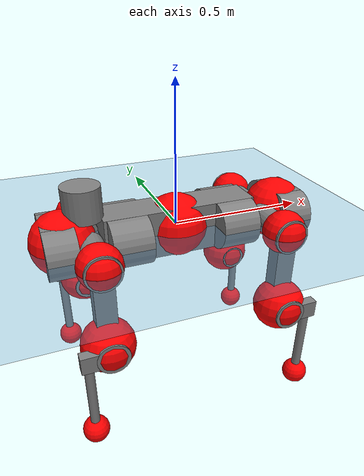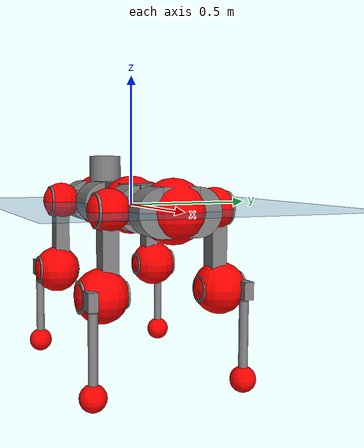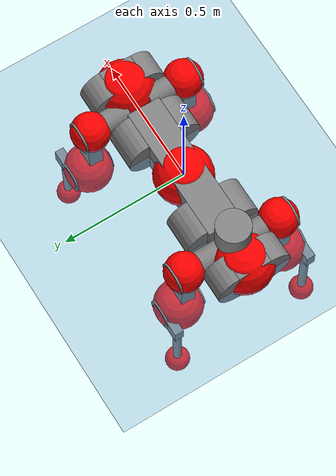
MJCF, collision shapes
<mujoco model="anymal_c">
  <compiler angle="radian" assetdir="assets" balanceinertia="true" inertiafromgeom="false"/>

  <option timestep="0.005" density="1.2" viscosity="2e-05"/>

  <size nkey="1"/>

  <visual>
    <quality shadowsize="8192"/>
    <map shadowclip="0.5"/>
  </visual>

  <default>
    <default class="/">
      <material specular="0" shininess="0.25"/>
      <geom contype="0" conaffinity="0" group="1" solref="-1000 -80"/>
      <site size="0.01 0.005 0.005" group="5"/>
      <general forcelimited="true" forcerange="-80 80" biastype="affine" gainprm="80" biasprm="0 -80 -2"/>
      <default class="anymal_c">
        <joint armature="0.01" damping="0.01" frictionloss="0.1"/>
        <default class="visual">
          <geom type="mesh" group="2"/>
          <default class="visual_zflip"/>
        </default>
        <default class="collision">
          <geom type="cylinder" group="3"/>
          <default class="foot">
            <geom size="0.03 0 0" type="sphere" condim="6" priority="1" friction="0.8 0.02 0.01" solimp="0.015 1 0.03"/>
          </default>
        </default>
      </default>
      <default class="reward_collision_sphere">
        <geom group="5" rgba="1 0 0 1"/>
      </default>
    </default>
  </default>

  <asset>
    <texture type="skybox" colorspace="auto" name="//unnamed_texture_0" builtin="gradient" rgb1="0.95 0.95 0.95" rgb2="0.95 0.95 0.95" width="100" height="600"/>
    <texture type="2d" colorspace="auto" name="texplane" builtin="checker" rgb1="0.345 0.575 0.748" rgb2="0.345 0.575 0.748" markrgb="1 1 1" width="512" height="512"/>
    <texture type="2d" colorspace="linear" name="base" file="base.png"/>
    <texture type="2d" colorspace="linear" name="top_shell" file="top_shell.png"/>
    <texture type="2d" colorspace="linear" name="bottom_shell" file="bottom_shell.png"/>
    <texture type="2d" colorspace="linear" name="remote" file="remote.png"/>
    <texture type="2d" colorspace="linear" name="hatch" file="hatch.png"/>
    <texture type="2d" colorspace="linear" name="handle" file="handle.png"/>
    <texture type="2d" colorspace="linear" name="face" file="face.png"/>
    <texture type="2d" colorspace="linear" name="battery" file="battery.png"/>
    <texture type="2d" colorspace="linear" name="lidar_cage" file="lidar_cage.png"/>
    <texture type="2d" colorspace="linear" name="depth_camera" file="depth_camera.png"/>
    <texture type="2d" colorspace="linear" name="wide_angle_camera" file="wide_angle_camera.png"/>
    <texture type="2d" colorspace="linear" name="lidar" file="lidar.png"/>
    <texture type="2d" colorspace="linear" name="drive" file="drive.png"/>
    <texture type="2d" colorspace="linear" name="hip_l" file="hip_l.png"/>
    <texture type="2d" colorspace="linear" name="shank_l" file="shank_l.png"/>
    <texture type="2d" colorspace="linear" name="foot" file="foot.png"/>
    <texture type="2d" colorspace="linear" name="thigh" file="thigh.png"/>
    <texture type="2d" colorspace="linear" name="shank_r" file="shank_r.png"/>
    <texture type="2d" colorspace="linear" name="hip_r" file="hip_r.png"/>
    <material name="MatPlane" class="/" texture="texplane" texuniform="true" texrepeat="2 2" specular="0.9" shininess="0.5"/>
    <material name="black_plastic" class="/" rgba="0.007 0.007 0.007 1"/>
    <material name="green" class="/" rgba="0.052 0.178 0.033 1"/>
    <material name="red" class="/" rgba="0.178 0.006 0.005 1"/>
    <material name="yellow" class="/" rgba="0.178 0.119 0.006 1"/>
    <material name="lwl" class="/" rgba="0.8 0.8 0.8 1"/>
    <material name="base" class="/" texture="base"/>
    <material name="top_shell" class="/" texture="top_shell"/>
    <material name="bottom_shell" class="/" texture="bottom_shell"/>
    <material name="hip_l" class="/" texture="hip_l"/>
    <material name="thigh" class="/" texture="thigh"/>
    <material name="shank_l" class="/" texture="shank_l"/>
    <material name="foot" class="/" texture="foot"/>
    <material name="hip_r" class="/" texture="hip_r"/>
    <material name="shank" class="/" texture="shank_r"/>
    <material name="hatch" class="/" texture="hatch"/>
    <material name="remote" class="/" texture="remote"/>
    <material name="handle" class="/" texture="handle"/>
    <material name="face" class="/" texture="face"/>
    <material name="depth_camera" class="/" texture="depth_camera"/>
    <material name="wide_angle_camera" class="/" texture="wide_angle_camera"/>
    <material name="battery" class="/" texture="battery"/>
    <material name="lidar_cage" class="/" texture="lidar_cage"/>
    <material name="lidar" class="/" texture="lidar"/>
    <material name="drive" class="/" texture="drive"/>
    <mesh name="base_0" class="/" file="base_0.obj"/>
    <mesh name="base_1" class="/" file="base_1.obj"/>
    <mesh name="base_2" class="/" file="base_2.obj"/>
    <mesh name="base_3" class="/" file="base_3.obj"/>
    <mesh name="base_4" class="/" file="base_4.obj"/>
    <mesh name="base_5" class="/" file="base_5.obj"/>
    <mesh name="top_shell" class="/" file="top_shell.obj"/>
    <mesh name="bottom_shell" class="/" file="bottom_shell.obj"/>
    <mesh name="remote" class="/" file="remote.obj"/>
    <mesh name="handle" class="/" file="handle.obj"/>
    <mesh name="face" class="/" file="face.obj"/>
    <mesh name="wide_angle_camera" class="/" file="wide_angle_camera.obj"/>
    <mesh name="depth_camera" class="/" file="depth_camera.obj"/>
    <mesh name="battery" class="/" file="battery.obj"/>
    <mesh name="lidar_cage" class="/" file="lidar_cage.obj"/>
    <mesh name="lidar" class="/" file="lidar.obj"/>
    <mesh name="drive" class="/" file="drive.obj"/>
    <mesh name="hip_l" class="/" file="hip_l.obj"/>
    <mesh name="thigh" class="/" file="thigh.obj"/>
    <mesh name="shank_l" class="/" file="shank_l.obj"/>
    <mesh name="foot" class="/" file="foot.obj"/>
    <mesh name="hip_r" class="/" file="hip_r.obj"/>
    <mesh name="hatch" class="/" file="hatch.obj"/>
    <mesh name="shank_r" class="/" file="shank_r.obj"/>
  </asset>

  <worldbody>
    <geom name="floor" class="/" size="100 100 0.125" type="plane" group="0" material="MatPlane"/>
    <light name="toplight_shadow" class="/" pos="0 0 5" dir="0.0990148 0.0990148 -0.990148" type="directional" ambient="0.04 0.04 0.04" diffuse="0.55 0.55 0.55" specular="0.12 0.12 0.12"/>
    <light name="toplight_fill" class="/" pos="0 0 5" dir="0.0990148 0.0990148 -0.990148" type="directional" castshadow="false" ambient="0.04 0.04 0.04" diffuse="0.3 0.3 0.3" specular="0.08 0.08 0.08"/>
    <body name="trunk" childclass="anymal_c" pos="-0.000127388 0.000103355 -0.0022558" quat="1 -0.00017283 0.000201618 -5.54262e-05">
      <inertial pos="0.00226772 0.00268343 0.0527302" quat="0.500333 0.500131 0.499847 0.499688" mass="16.3288" diaginertia="0.394626 0.444767 0.245061"/>
      <joint name="//unnamed_joint_0" type="free" armature="0" damping="0" frictionloss="0"/>
      <geom name="//unnamed_geom_1" class="visual" material="green" mesh="base_0"/>
      <geom name="//unnamed_geom_2" class="visual" material="yellow" mesh="base_1"/>
      <geom name="//unnamed_geom_3" class="visual" material="red" mesh="base_2"/>
      <geom name="//unnamed_geom_4" class="visual" material="black_plastic" mesh="base_3"/>
      <geom name="//unnamed_geom_5" class="visual" material="lwl" mesh="base_4"/>
      <geom name="//unnamed_geom_6" class="visual" material="base" mesh="base_5"/>
      <geom name="trunk_1" class="collision" size="0.277606 0.0670084 0.0861537" type="box"/>
      <geom name="trunk_2" class="collision" size="0.0861537 0.0694016" pos="0.19679 0.0656662 0" quat="0.707107 0 0.707107 0"/>
      <geom name="trunk_3" class="collision" size="0.0861537 0.0694016" pos="-0.19679 0.0656662 0" quat="0.707107 0 0.707107 0"/>
      <geom name="trunk_4" class="collision" size="0.0861537 0.0694016" pos="0.19679 -0.0656662 0" quat="0.707107 0 0.707107 0"/>
      <geom name="trunk_5" class="collision" size="0.0861537 0.0694016" pos="-0.19679 -0.0656662 0" quat="0.707107 0 0.707107 0"/>
      <geom name="//unnamed_geom_12" class="visual" material="top_shell" mesh="top_shell"/>
      <geom name="//unnamed_geom_13" class="visual" material="bottom_shell" mesh="bottom_shell"/>
      <geom name="//unnamed_geom_14" class="visual" material="remote" mesh="remote"/>
      <geom name="//unnamed_geom_15" class="visual" material="handle" mesh="handle"/>
      <geom name="//unnamed_geom_16" class="visual" pos="0.375031 0 0" quat="1 0 0 0" material="face" mesh="face"/>
      <geom name="trunk_6" class="collision" size="0.0526495 0.0670084 0.0861537" pos="0.424794 0 0" type="box"/>
      <geom name="//unnamed_geom_18" class="collision" size="0.0861537 0.0526495" pos="0.424794 0.0656662 0" quat="0.707107 0 0.707107 0"/>
      <geom name="//unnamed_geom_19" class="collision" size="0.0861537 0.0526495" pos="0.424794 -0.0656662 0" quat="0.707107 0 0.707107 0"/>
      <geom name="//unnamed_geom_20" class="visual" pos="0.417697 0 -0.0309879" quat="0.965926 0 0.258819 0" material="depth_camera" mesh="depth_camera"/>
      <geom name="//unnamed_geom_21" class="visual" pos="0.464152 0 0.0154029" material="wide_angle_camera" mesh="wide_angle_camera"/>
      <geom name="//unnamed_geom_22" class="visual_zflip" pos="-0.375031 0 0" quat="0 0 0 1" material="face" mesh="face"/>
      <geom name="trunk_7" class="collision" size="0.0526495 0.0670084 0.0861537" pos="-0.424794 0 0" quat="0 0 0 1" type="box"/>
      <geom name="//unnamed_geom_24" class="collision" size="0.0861537 0.0526495" pos="-0.424794 -0.0656662 0" quat="0 -0.707107 0 0.707107"/>
      <geom name="//unnamed_geom_25" class="collision" size="0.0861537 0.0526495" pos="-0.424794 0.0656662 0" quat="0 -0.707107 0 0.707107"/>
      <geom name="//unnamed_geom_26" class="visual" pos="-0.417697 0 -0.0309879" quat="0 -0.258819 0 0.965926" material="depth_camera" mesh="depth_camera"/>
      <geom name="//unnamed_geom_27" class="visual_zflip" pos="-0.464152 0 0.0154029" quat="0 0 0 1" material="wide_angle_camera" mesh="wide_angle_camera"/>
      <geom name="//unnamed_geom_28" class="visual" material="battery" mesh="battery"/>
      <geom name="//unnamed_geom_29" class="visual" pos="0 0.0721685 0.0289467" quat="0.683013 -0.183013 0.183013 0.683013" material="depth_camera" mesh="depth_camera"/>
      <geom name="//unnamed_geom_30" class="visual" pos="0 -0.0721685 0.0289467" quat="0.683013 0.183013 0.183013 -0.683013" material="depth_camera" mesh="depth_camera"/>
      <geom name="//unnamed_geom_31" class="visual" pos="-0.32934 0 0.0756257" quat="1 0 0 0" material="lidar_cage" mesh="lidar_cage"/>
      <geom name="trunk_8" class="collision" size="0.0670084 0.0574358" pos="-0.32934 0 0.137361"/>
      <geom name="//unnamed_geom_33" class="visual" pos="-0.32934 1.30862e-05 0.146312" quat="0.707107 0 0 -0.707107" material="lidar" mesh="lidar"/>
      <geom name="//unnamed_geom_34" class="visual" pos="0.271343 0.0975935 -1.56686e-09" quat="0.258819 0.965926 0 0" material="drive" mesh="drive"/>
      <geom name="//unnamed_geom_35" class="visual" pos="0.271343 -0.0975935 1.56686e-09" quat="0.258819 -0.965926 0 0" material="drive" mesh="drive"/>
      <geom name="//unnamed_geom_36" class="visual" pos="-0.271343 0.0975935 1.56686e-09" quat="0 0 0.965926 -0.258819" material="drive" mesh="drive"/>
      <geom name="//unnamed_geom_37" class="visual" pos="-0.271343 -0.0975935 -1.56686e-09" quat="0 0 -0.965926 -0.258819" material="drive" mesh="drive"/>
      <geom name="//unnamed_geom_38" class="visual" pos="0.104954 0 0.0751112" quat="1 0 0 0" material="hatch" mesh="hatch"/>
      <geom name="//unnamed_geom_39" class="reward_collision_sphere" size="0.114872"/>
      <geom name="//unnamed_geom_40" class="reward_collision_sphere" size="0.114872" pos="0.407151 0 0"/>
      <geom name="//unnamed_geom_41" class="reward_collision_sphere" size="0.114872" pos="-0.407151 0 0"/>
      <site name="imu" pos="0.223552 0.00138146 0.047209" size="0.00957263"/>
      <camera name="track" pos="0 -1.87618 0" quat="0.707107 0.707107 0 0" mode="trackcom"/>
      <camera name="ego_camera" pos="0.407151 0 -0.0411568" quat="-0.5 -0.5 0.5 0.5"/>
      <body name="LF_HIP" pos="0.271338 0.0967335 -0.000961289" quat="0.259211 0.965821 -9.01909e-05 -0.000109912">
        <inertial pos="0.0486019 -0.0145796 -0.00944605" quat="-0.125059 0.709611 -0.138694 0.679394" mass="2.48788" diaginertia="0.00357851 0.00355231 0.00389709"/>
        <joint name="LF_HAA" pos="0 0 0" axis="0.999998 0.00122667 -0.00137321" range="-0.726392 0.488738" armature="0.0104229" damping="0.0163068" frictionloss="0.0828576"/>
        <geom name="//unnamed_geom_42" class="visual" pos="0 -9.21711e-05 1.5139e-05" quat="0.258819 -0.965926 0 0" material="hip_l" mesh="hip_l"/>
        <geom name="//unnamed_geom_43" class="visual" pos="0.0541963 -0.0661412 -0.0388585" quat="0.183013 -0.683013 0.683013 0.183013" material="drive" mesh="drive"/>
        <geom name="//unnamed_geom_44" class="collision" size="0.0478632 0.0670084" pos="0.0541963 -0.0112194 -0.0071047" quat="-0.353553 -0.612372 0.612372 -0.353553"/>
        <body name="LF_THIGH" pos="0.0543594 -0.0678296 -0.0425841" quat="0.183108 -0.683095 0.682918 0.182965">
          <inertial pos="0.02758 0.000188134 -0.25396" quat="0.993141 -0.0050952 -0.079198 0.0858628" mass="2.56908" diaginertia="0.0183123 0.0216317 0.00450674"/>
          <joint name="LF_HFE" pos="0 0 0" axis="0.999997 -0.00133724 -0.00203333" range="-3.18475 3.14621" armature="0.00923855" damping="0.00959788" frictionloss="0.0937632"/>
          <geom name="//unnamed_geom_45" class="visual" pos="-0.000662716 -1.04429e-06 0" quat="0.707107 0 0 -0.707107" material="thigh" mesh="thigh"/>
          <geom name="//unnamed_geom_46" class="collision" size="0.0622221 0.0382905" pos="0.0361912 0 0" quat="0.5 0.5 -0.5 -0.5"/>
          <geom name="//unnamed_geom_47" class="collision" size="0.0358974 0.0287179 0.135275" pos="0.0271434 0 -0.145401" quat="0.707107 0 0 -0.707107" type="box"/>
          <geom name="//unnamed_geom_48" class="visual" pos="0.0907494 0 -0.293242" quat="1 0 0 0" material="drive" mesh="drive"/>
          <geom name="//unnamed_geom_49" class="collision" size="0.0478632 0.0670084" pos="0.0274148 0 -0.293242" quat="0.707107 0 0.707107 0"/>
          <geom name="//unnamed_geom_50" class="reward_collision_sphere" size="0.076581" pos="0.0226195 0 0"/>
          <body name="LF_SHANK" pos="0.0909259 0.00159075 -0.291362" quat="0.999999 5.43006e-05 0.00105945 -0.000951541">
            <inertial pos="0.00485274 -0.0573446 -0.0827427" quat="0.992943 -0.115812 -0.000568095 -0.0255232" mass="0.501631" diaginertia="0.00616253 0.0065653 0.00125264"/>
            <joint name="LF_KFE" pos="0 0 0" axis="0.999982 0.00308066 -0.00514018" range="-3.15498 3.16012" armature="0.00945395" damping="0.0230144" frictionloss="0.0848518"/>
            <geom name="//unnamed_geom_51" class="visual" pos="-0.000216097 -0.00115224 0" quat="0.707107 0 0 -0.707107" material="shank_l" mesh="shank_l"/>
            <geom name="LF_kfe_act" class="collision" size="0.0574358 0.0191453" pos="0.0180956 0 0" quat="0.5 0.5 -0.5 -0.5"/>
            <geom name="//unnamed_geom_53" class="collision" size="0.0550417 0.0323076 0.018188" pos="0.0180956 -0.0539392 0" quat="0.5 0.5 -0.5 -0.5" type="box"/>
            <geom name="//unnamed_geom_54" class="visual" pos="0.0118074 -0.0828762 -0.347744" quat="0.382683 0 0 -0.92388" material="foot" mesh="foot"/>
            <geom name="LF_calf" class="collision" size="0.0167521 0.135215" pos="0.0118074 -0.0825049 -0.173872" quat="0.707107 0 0 -0.707107"/>
            <geom name="LF_foot" class="foot" size="0.0313461" pos="0.0118074 -0.0825049 -0.324594" quat="0.707107 0 0 -0.707107"/>
            <geom name="//unnamed_geom_57" class="reward_collision_sphere" size="0.0957263" pos="-0.045239 0 0"/>
            <geom name="//unnamed_geom_58" class="reward_collision_sphere" size="0.0478632" pos="0.0118074 -0.0825049 -0.324594"/>
            <site name="LF_foot" class="foot" pos="0.0118074 -0.0825049 -0.324594" quat="0.707107 0 0 -0.707107" size="0.00957263"/>
          </body>
        </body>
      </body>
      <body name="RF_HIP" pos="0.271786 -0.099678 0.000756419" quat="0.257942 -0.96616 1.1807e-05 -0.000898762">
        <inertial pos="0.0515787 0.0137014 -0.00753434" quat="0.135147 0.678856 0.127552 0.710366" mass="2.33589" diaginertia="0.0034282 0.00341216 0.00378984"/>
        <joint name="RF_HAA" pos="0 0 0" axis="1 0.000347113 -0.000416454" range="-0.443457 0.666658" armature="0.00938567" damping="0.00555816" frictionloss="0.0867702"/>
        <geom name="//unnamed_geom_59" class="visual" pos="0 9.21703e-05 1.5139e-05" quat="0.258819 0.965926 0 0" material="hip_r" mesh="hip_r"/>
        <geom name="//unnamed_geom_60" class="visual" pos="0.0541963 0.0661412 -0.0388585" quat="0.183013 0.683013 0.683013 -0.183013" material="drive" mesh="drive"/>
        <geom name="//unnamed_geom_61" class="collision" size="0.0478632 0.0670084" pos="0.0541963 0.0112194 -0.0071047" quat="-0.353553 0.612372 0.612372 0.353553"/>
        <body name="RF_THIGH" pos="0.0569931 0.0694631 -0.0428813" quat="0.183048 0.68301 0.683005 -0.183017">
          <inertial pos="0.0285325 0.000822007 -0.252607" quat="0.992792 -0.00395849 -0.0803841 0.0888096" mass="2.74672" diaginertia="0.0182697 0.0222894 0.0049109"/>
          <joint name="RF_HFE" pos="0 0 0" axis="0.999925 0.00866669 0.00867179" stiffness="0.00664849" range="-3.09271 3.0839" armature="0.00983233" damping="0" frictionloss="0.100626"/>
          <geom name="//unnamed_geom_62" class="visual" pos="-0.000662716 -1.04429e-06 0" quat="0.707107 0 0 -0.707107" material="thigh" mesh="thigh"/>
          <geom name="//unnamed_geom_63" class="collision" size="0.0622221 0.0382905" pos="0.0361912 0 0" quat="0.5 0.5 0.5 0.5"/>
          <geom name="//unnamed_geom_64" class="collision" size="0.0358974 0.0287179 0.135275" pos="0.0271434 0 -0.145401" quat="0.707107 0 0 0.707107" type="box"/>
          <geom name="//unnamed_geom_65" class="visual" pos="0.0907494 0 -0.293242" quat="1 0 0 0" material="drive" mesh="drive"/>
          <geom name="//unnamed_geom_66" class="collision" size="0.0478632 0.0670084" pos="0.0274148 0 -0.293242" quat="0.707107 0 0.707107 0"/>
          <geom name="//unnamed_geom_67" class="reward_collision_sphere" size="0.076581" pos="0.0226195 0 0"/>
          <body name="RF_SHANK" pos="0.0935531 -0.00107943 -0.292146" quat="1 0.000184789 -0.000501185 -0.000166421">
            <inertial pos="0.00529894 0.0585184 -0.0802473" quat="0.993265 0.113107 0.00117332 0.0250833" mass="0.498974" diaginertia="0.00626068 0.00664082 0.00127722"/>
            <joint name="RF_KFE" pos="0 0 0" axis="0.99993 0.0108865 -0.00469049" range="-3.14732 3.08299" armature="0.00947597" damping="0.00454901" frictionloss="0.0838803"/>
            <geom name="//unnamed_geom_68" class="visual" pos="-0.000216096 0.00115224 0" quat="0.707107 0 0 0.707107" material="shank" mesh="shank_r"/>
            <geom name="RF_kfe_act" class="collision" size="0.0574358 0.0191453" pos="0.0180956 0 0" quat="0.5 0.5 0.5 0.5"/>
            <geom name="//unnamed_geom_70" class="collision" size="0.0550417 0.0323076 0.018188" pos="0.0180956 0.0539392 0" quat="0.5 0.5 0.5 0.5" type="box"/>
            <geom name="//unnamed_geom_71" class="visual" pos="0.0118073 0.0828762 -0.347744" quat="0.382683 0 0 0.92388" material="foot" mesh="foot"/>
            <geom name="RF_calf" class="collision" size="0.0167521 0.135215" pos="0.0118074 0.0825049 -0.173872" quat="0.707107 0 0 0.707107"/>
            <geom name="RF_foot" class="foot" size="0.0281534" pos="0.0118074 0.0825049 -0.324594" quat="0.707107 0 0 0.707107"/>
            <geom name="//unnamed_geom_74" class="reward_collision_sphere" size="0.0957263" pos="-0.045239 0 0"/>
            <geom name="//unnamed_geom_75" class="reward_collision_sphere" size="0.0478632" pos="0.0118074 0.0825049 -0.324594"/>
            <site name="RF_foot" class="foot" pos="0.0118074 0.0825049 -0.324594" quat="0.707107 0 0 0.707107" size="0.00957263"/>
          </body>
        </body>
      </body>
      <body name="LH_HIP" pos="-0.269711 0.0998936 0.000598722" quat="-7.43739e-05 -0.000113024 0.965859 -0.25907">
        <inertial pos="0.0505439 0.0114128 -0.00958405" quat="0.142666 0.673724 0.134613 0.712476" mass="2.36418" diaginertia="0.00353356 0.00365902 0.00376815"/>
        <joint name="LH_HAA" pos="0 0 0" axis="0.999951 -0.00466817 0.00875859" range="-0.514682 0.708379" armature="0.00954979" damping="0" frictionloss="0.100837"/>
        <geom name="//unnamed_geom_76" class="visual" pos="0 9.21703e-05 1.5139e-05" quat="-0.258819 -0.965926 0 0" material="hip_r" mesh="hip_r"/>
        <geom name="//unnamed_geom_77" class="visual" pos="0.0541963 0.0661412 -0.0388585" quat="0.183013 0.683013 0.683013 -0.183013" material="drive" mesh="drive"/>
        <geom name="//unnamed_geom_78" class="collision" size="0.0478632 0.0670084" pos="0.0541963 0.0112194 -0.0071047" quat="-0.353553 0.612372 0.612372 0.353553"/>
        <body name="LH_THIGH" pos="0.0538293 0.065025 -0.0434996" quat="0.182518 0.682563 0.683523 -0.18328">
          <inertial pos="0.0283451 -0.00233598 -0.252545" quat="0.992761 -0.00517603 -0.0808502 0.0886689" mass="2.69398" diaginertia="0.0192191 0.0220844 0.00504369"/>
          <joint name="LH_HFE" pos="0 0 0" axis="0.999995 -0.00302535 0.000494316" range="-3.14557 3.13421" armature="0.00946036" damping="0.0127002" frictionloss="0.0967962"/>
          <geom name="//unnamed_geom_79" class="visual" pos="-0.000662716 -1.04429e-06 0" quat="0.707107 0 0 -0.707107" material="thigh" mesh="thigh"/>
          <geom name="//unnamed_geom_80" class="collision" size="0.0622221 0.0382905" pos="0.0361912 0 0" quat="0.5 0.5 -0.5 -0.5"/>
          <geom name="//unnamed_geom_81" class="collision" size="0.0358974 0.0287179 0.135275" pos="0.0271434 0 -0.145401" quat="0.707107 0 0 -0.707107" type="box"/>
          <geom name="//unnamed_geom_82" class="visual" pos="0.0907494 0 -0.293242" quat="1 0 0 0" material="drive" mesh="drive"/>
          <geom name="//unnamed_geom_83" class="collision" size="0.0478632 0.0670084" pos="0.0274148 0 -0.293242" quat="0.707107 0 0.707107 0"/>
          <geom name="//unnamed_geom_84" class="reward_collision_sphere" size="0.076581" pos="0.0226195 0 0"/>
          <body name="LH_SHANK" pos="0.0929325 -0.000513483 -0.29287" quat="0.999999 -4.02285e-05 0.000328727 -0.00114025">
            <inertial pos="0.00747132 0.057673 -0.085076" quat="0.992987 0.115494 -0.000877942 0.0252606" mass="0.51274" diaginertia="0.00638525 0.0071433 0.00136665"/>
            <joint name="LH_KFE" pos="0 0 0" axis="1 -0.000476727 -0.000700288" range="-3.14256 3.09441" armature="0.00960401" damping="0.0209552" frictionloss="0.0996707"/>
            <geom name="//unnamed_geom_85" class="visual" pos="-0.000216096 0.00115224 0" quat="-0.707107 0 0 -0.707107" material="shank" mesh="shank_r"/>
            <geom name="LH_kfe_act" class="collision" size="0.0574358 0.0191453" pos="0.0180956 0 0" quat="0.5 0.5 -0.5 -0.5"/>
            <geom name="//unnamed_geom_87" class="collision" size="0.0550417 0.0323076 0.018188" pos="0.0180956 0.0539392 0" quat="0.5 0.5 -0.5 -0.5" type="box"/>
            <geom name="//unnamed_geom_88" class="visual" pos="0.0118073 0.0828762 -0.347744" quat="-0.382683 0 0 -0.92388" material="foot" mesh="foot"/>
            <geom name="LH_calf" class="collision" size="0.0167521 0.135215" pos="0.0118074 0.0825049 -0.173872" quat="0.707107 0 0 -0.707107"/>
            <geom name="LH_foot" class="foot" size="0.0268969" pos="0.0118074 0.0825049 -0.324594" quat="0.707107 0 0 -0.707107"/>
            <geom name="//unnamed_geom_91" class="reward_collision_sphere" size="0.0957263" pos="-0.045239 0 0"/>
            <geom name="//unnamed_geom_92" class="reward_collision_sphere" size="0.0478632" pos="0.0118074 0.0825049 -0.324594"/>
            <site name="LH_foot" class="foot" pos="0.0118074 0.0825049 -0.324594" quat="0.707107 0 0 -0.707107" size="0.00957263"/>
          </body>
        </body>
      </body>
      <body name="RH_HIP" pos="-0.27145 -0.095049 -0.00164033" quat="0.000687843 -9.7385e-05 -0.965565 -0.260159">
        <inertial pos="0.0502195 -0.0136273 -0.00934441" quat="-0.136901 0.70421 -0.130777 0.684284" mass="2.40425" diaginertia="0.00354061 0.00344638 0.00369245"/>
        <joint name="RH_HAA" pos="0 0 0" axis="1 -0.000507819 9.33459e-06" range="-0.77797 0.474359" armature="0.00813702" damping="0.0149303" frictionloss="0.104321"/>
        <geom name="//unnamed_geom_93" class="visual" pos="0 -9.21711e-05 1.5139e-05" quat="-0.258819 0.965926 0 0" material="hip_l" mesh="hip_l"/>
        <geom name="//unnamed_geom_94" class="visual" pos="0.0541963 -0.0661412 -0.0388585" quat="-0.183013 0.683013 -0.683013 -0.183013" material="drive" mesh="drive"/>
        <geom name="//unnamed_geom_95" class="collision" size="0.0478632 0.0670084" pos="0.0541963 -0.0112194 -0.0071047" quat="0.353553 0.612372 -0.612372 0.353553"/>
        <body name="RH_THIGH" pos="0.0549035 -0.0675915 -0.0453819" quat="-0.18297 0.683084 -0.682967 -0.18296">
          <inertial pos="0.0282347 0.00240233 -0.251123" quat="0.992725 0.000804053 -0.0751455 0.0940723" mass="2.62189" diaginertia="0.0177268 0.0209139 0.00469931"/>
          <joint name="RH_HFE" pos="0 0 0" axis="0.999951 0.00666787 -0.00734758" stiffness="0.0081196" range="-3.13469 3.08775" armature="0.0108772" damping="0.00843201" frictionloss="0.0930336"/>
          <geom name="//unnamed_geom_96" class="visual" pos="-0.000662716 -1.04429e-06 0" quat="0.707107 0 0 -0.707107" material="thigh" mesh="thigh"/>
          <geom name="//unnamed_geom_97" class="collision" size="0.0622221 0.0382905" pos="0.0361912 0 0" quat="0.5 0.5 0.5 0.5"/>
          <geom name="//unnamed_geom_98" class="collision" size="0.0358974 0.0287179 0.135275" pos="0.0271434 0 -0.145401" quat="0.707107 0 0 0.707107" type="box"/>
          <geom name="//unnamed_geom_99" class="visual" pos="0.0907494 0 -0.293242" quat="1 0 0 0" material="drive" mesh="drive"/>
          <geom name="//unnamed_geom_100" class="collision" size="0.0478632 0.0670084" pos="0.0274148 0 -0.293242" quat="0.707107 0 0.707107 0"/>
          <geom name="//unnamed_geom_101" class="reward_collision_sphere" size="0.076581" pos="0.0226195 0 0"/>
          <body name="RH_SHANK" pos="0.088595 -0.0020872 -0.293863" quat="0.999999 -0.00115755 -0.000398696 0.0002778">
            <inertial pos="0.00601369 -0.0575356 -0.082739" quat="0.992197 -0.121103 -0.0132983 -0.026503" mass="0.492343" diaginertia="0.00600712 0.00668248 0.00131366"/>
            <joint name="RH_KFE" pos="0 0 0" axis="0.999957 -0.00587055 0.00715071" stiffness="0.00998158" range="-3.07469 3.1907" armature="0.00941388" damping="0.00686025" frictionloss="0.0913092"/>
            <geom name="//unnamed_geom_102" class="visual" pos="-0.000216097 -0.00115224 0" quat="0.707107 0 0 -0.707107" material="shank_l" mesh="shank_l"/>
            <geom name="RH_kfe_act" class="collision" size="0.0574358 0.0191453" pos="0.0180956 0 0" quat="0.5 0.5 0.5 0.5"/>
            <geom name="//unnamed_geom_104" class="collision" size="0.0550417 0.0323076 0.018188" pos="0.0180956 -0.0539392 0" quat="0.5 0.5 0.5 0.5" type="box"/>
            <geom name="//unnamed_geom_105" class="visual" pos="0.0118074 -0.0828762 -0.347744" quat="0.382683 0 0 -0.92388" material="foot" mesh="foot"/>
            <geom name="RH_calf" class="collision" size="0.0167521 0.135215" pos="0.0118074 -0.0825049 -0.173872" quat="0.707107 0 0 0.707107"/>
            <geom name="RH_foot" class="foot" size="0.0254741" pos="0.0118074 -0.0825049 -0.324594" quat="0.707107 0 0 0.707107"/>
            <geom name="//unnamed_geom_108" class="reward_collision_sphere" size="0.0957263" pos="-0.045239 0 0"/>
            <geom name="//unnamed_geom_109" class="reward_collision_sphere" size="0.0478632" pos="0.0118074 -0.0825049 -0.324594"/>
            <site name="RH_foot" class="foot" pos="0.0118074 -0.0825049 -0.324594" quat="0.707107 0 0 0.707107" size="0.00957263"/>
          </body>
        </body>
      </body>
    </body>
  </worldbody>

  <contact>
    <pair class="/" geom1="floor" geom2="LF_foot" name="//unnamed_contact_0"/>
    <pair class="/" geom1="floor" geom2="RF_foot" name="//unnamed_contact_1"/>
    <pair class="/" geom1="floor" geom2="LH_foot" name="//unnamed_contact_2"/>
    <pair class="/" geom1="floor" geom2="RH_foot" name="//unnamed_contact_3"/>
  </contact>

  <actuator>
    <general name="LF_HAA" class="/" joint="LF_HAA" forcerange="-74.0135 74.0135" gainprm="82.6363" biasprm="0 -82.6363 -1.98314"/>
    <general name="LF_HFE" class="/" joint="LF_HFE" forcerange="-69.4662 69.4662" gainprm="82.6363" biasprm="0 -82.6363 -1.98314"/>
    <general name="LF_KFE" class="/" joint="LF_KFE" forcerange="-74.3168 74.3168" gainprm="82.6363" biasprm="0 -82.6363 -1.98314"/>
    <general name="RF_HAA" class="/" joint="RF_HAA" forcerange="-79.6184 79.6184" gainprm="82.6363" biasprm="0 -82.6363 -1.98314"/>
    <general name="RF_HFE" class="/" joint="RF_HFE" forcerange="-78.6273 78.6273" gainprm="82.6363" biasprm="0 -82.6363 -1.98314"/>
    <general name="RF_KFE" class="/" joint="RF_KFE" forcerange="-75.1867 75.1867" gainprm="82.6363" biasprm="0 -82.6363 -1.98314"/>
    <general name="LH_HAA" class="/" joint="LH_HAA" forcerange="-82.961 82.961" gainprm="82.6363" biasprm="0 -82.6363 -1.98314"/>
    <general name="LH_HFE" class="/" joint="LH_HFE" forcerange="-77.4045 77.4045" gainprm="82.6363" biasprm="0 -82.6363 -1.98314"/>
    <general name="LH_KFE" class="/" joint="LH_KFE" forcerange="-75.0171 75.0171" gainprm="82.6363" biasprm="0 -82.6363 -1.98314"/>
    <general name="RH_HAA" class="/" joint="RH_HAA" forcerange="-69.5237 69.5237" gainprm="82.6363" biasprm="0 -82.6363 -1.98314"/>
    <general name="RH_HFE" class="/" joint="RH_HFE" forcerange="-79.7112 79.7112" gainprm="82.6363" biasprm="0 -82.6363 -1.98314"/>
    <general name="RH_KFE" class="/" joint="RH_KFE" forcerange="-79.7254 79.7254" gainprm="82.6363" biasprm="0 -82.6363 -1.98314"/>
  </actuator>

  <sensor>
    <gyro site="imu" name="imu_angular_velocity"/>
    <velocimeter site="imu" name="imu_linear_velocity"/>
    <framelinvel objtype="site" objname="LF_foot" name="LF_foot_global_linear_velocity"/>
    <framelinvel objtype="site" objname="RF_foot" name="RF_foot_global_linear_velocity"/>
    <framelinvel objtype="site" objname="LH_foot" name="LH_foot_global_linear_velocity"/>
    <framelinvel objtype="site" objname="RH_foot" name="RH_foot_global_linear_velocity"/>
  </sensor>

  <keyframe>
    <key name="home" qpos="0 0 0.55 1 0 0 0 0 0.4 -0.8 0 -0.4 0.8 0 -0.4 0.8 0 0.4 -0.8"/>
  </keyframe>
</mujoco>
